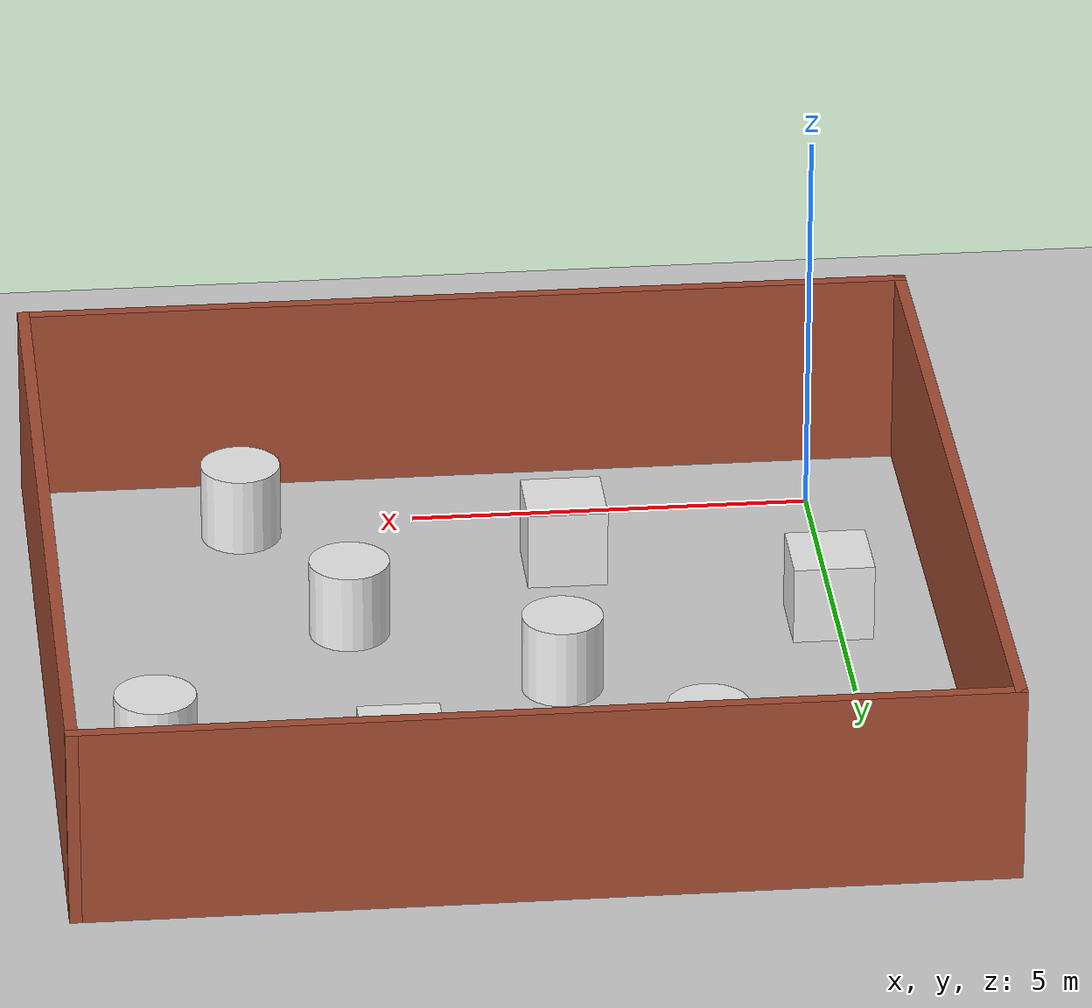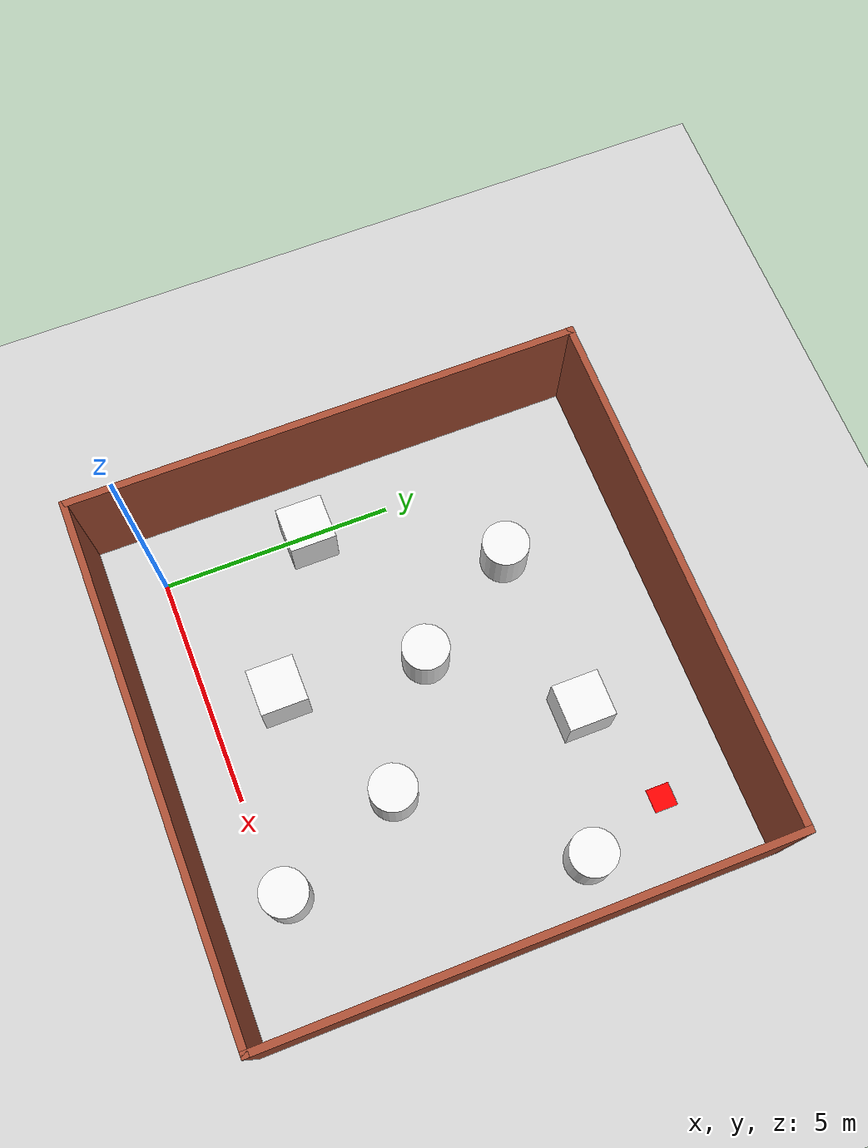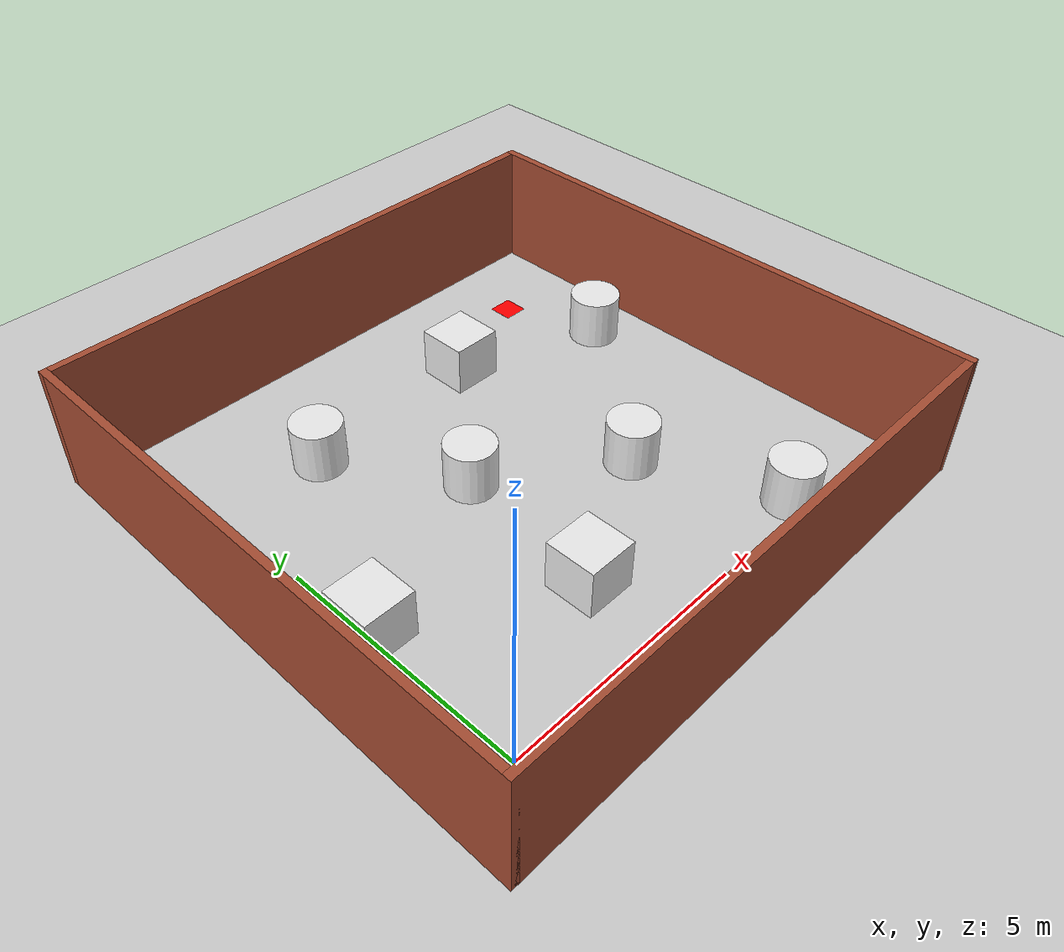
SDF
<sdf version="1.6">
 <world name="default">
  <light name="sun" type="directional">
   <pose>0 0 10 0 -0 0</pose>
   <diffuse>0.8 0.8 0.8 1</diffuse>
   <specular>0.2 0.2 0.2 1</specular>
   <attenuation>
    <range>1000</range>
    <constant>0.9</constant>
    <linear>0.01</linear>
    <quadratic>0.001</quadratic>
   </attenuation>
   <direction>-0.5 0.1 -0.9</direction>
  </light>
  <model name="ground_plane">
   <static>1</static>
   <link name="link">
    <collision name="collision">
     <geometry><plane><normal>0 0 1</normal><size>100 100</size></plane></geometry>
     <surface>
      <contact><collide_bitmask>65535</collide_bitmask></contact>
      <friction><ode><mu>100</mu><mu2>50</mu2></ode></friction>
     </surface>
    </collision>
    <visual name="visual">
     <cast_shadows>0</cast_shadows>
     <geometry><plane><normal>0 0 1</normal><size>100 100</size></plane></geometry>
     <material>
      <script><uri>file://media/materials/scripts/gazebo.material</uri><name>Gazebo/Grey</name></script>
     </material>
    </visual>
   </link>
  </model>
  <gravity>0 0 -9.8</gravity>
  <magnetic_field>6e-06 2.3e-05 -4.2e-05</magnetic_field>
  <atmosphere type="adiabatic"/>
  <physics name="default_physics" default="0" type="ode">
   <max_step_size>0.020</max_step_size>
   <real_time_factor>1</real_time_factor>
   <real_time_update_rate>1000</real_time_update_rate>
  </physics>
  <scene><ambient>0.4 0.4 0.4 1</ambient><background>0.7 0.7 0.7 1</background><shadows>1</shadows></scene>
  <audio><device>default</device></audio>
  <spherical_coordinates>
   <surface_model>EARTH_WGS84</surface_model>
   <latitude_deg>0</latitude_deg>
   <longitude_deg>0</longitude_deg>
   <elevation>0</elevation>
   <heading_deg>0</heading_deg>
  </spherical_coordinates>
  <model name="simul_1">
   <pose>4.24249 4.21237 0 0 -0 0</pose>
   <link name="Wall_0">
    <collision name="Wall_0_Collision">
     <geometry><box><size>11.25 0.15 2.5</size></box></geometry>
     <pose>0 0 1.25 0 -0 0</pose>
    </collision>
    <visual name="Wall_0_Visual">
     <pose>0 0 1.25 0 -0 0</pose>
     <geometry><box><size>11.25 0.15 2.5</size></box></geometry>
     <material>
      <script><uri>file://media/materials/scripts/gazebo.material</uri><name>Gazebo/Bricks</name></script>
      <ambient>1 1 1 1</ambient>
     </material>
     <meta><layer>0</layer></meta>
    </visual>
    <pose>0 -5.425 0 0 -0 0</pose>
   </link>
   <link name="Wall_1">
    <collision name="Wall_1_Collision">
     <geometry><box><size>11 0.15 2.5</size></box></geometry>
     <pose>0 0 1.25 0 -0 0</pose>
    </collision>
    <visual name="Wall_1_Visual">
     <pose>0 0 1.25 0 -0 0</pose>
     <geometry><box><size>11 0.15 2.5</size></box></geometry>
     <material>
      <script><uri>file://media/materials/scripts/gazebo.material</uri><name>Gazebo/Bricks</name></script>
      <ambient>1 1 1 1</ambient>
     </material>
     <meta><layer>0</layer></meta>
    </visual>
    <pose>5.55 0 0 0 -0 1.5708</pose>
   </link>
   <link name="Wall_2">
    <collision name="Wall_2_Collision">
     <geometry><box><size>11.25 0.15 2.5</size></box></geometry>
     <pose>0 0 1.25 0 -0 0</pose>
    </collision>
    <visual name="Wall_2_Visual">
     <pose>0 0 1.25 0 -0 0</pose>
     <geometry><box><size>11.25 0.15 2.5</size></box></geometry>
     <material>
      <script><uri>file://media/materials/scripts/gazebo.material</uri><name>Gazebo/Bricks</name></script>
      <ambient>1 1 1 1</ambient>
     </material>
     <meta><layer>0</layer></meta>
    </visual>
    <pose>0 5.425 0 0 -0 3.14159</pose>
   </link>
   <link name="Wall_3">
    <collision name="Wall_3_Collision">
     <geometry><box><size>11 0.15 2.5</size></box></geometry>
     <pose>0 0 1.25 0 -0 0</pose>
    </collision>
    <visual name="Wall_3_Visual">
     <pose>0 0 1.25 0 -0 0</pose>
     <geometry><box><size>11 0.15 2.5</size></box></geometry>
     <material>
      <script><uri>file://media/materials/scripts/gazebo.material</uri><name>Gazebo/Bricks</name></script>
      <ambient>1 1 1 1</ambient>
     </material>
     <meta><layer>0</layer></meta>
    </visual>
    <pose>-5.55 0 0 0 -0 -1.5708</pose>
   </link>
   <static>1</static>
  </model>
  <model name="unit_box">
   <pose>0.113709 3.19761 0.499995 -1e-05 -0 -0</pose>
   <link name="link">
    <collision name="collision"><geometry><box><size>1 1 1</size></box></geometry></collision>
    <visual name="visual">
     <geometry><box><size>1 1 1</size></box></geometry>
     <material>
      <script><name>Gazebo/White</name><uri>file://media/materials/scripts/gazebo.material</uri></script>
     </material>
    </visual>
   </link>
  </model>
  <model name="unit_box_0">
   <pose>3.2313 1.4768 0.499995 0 1e-05 0</pose>
   <link name="link">
    <collision name="collision"><geometry><box><size>1 1 1</size></box></geometry></collision>
    <visual name="visual">
     <geometry><box><size>1 1 1</size></box></geometry>
     <material>
      <script><name>Gazebo/White</name><uri>file://media/materials/scripts/gazebo.material</uri></script>
     </material>
    </visual>
   </link>
  </model>
  <model name="unit_cylinder">
   <pose>3.55954 4.55944 0.499998 3e-06 -3e-06 0</pose>
   <link name="link">
    <collision name="collision">
     <geometry><cylinder><radius>0.5</radius><length>1</length></cylinder></geometry>
    </collision>
    <visual name="visual">
     <geometry><cylinder><radius>0.5</radius><length>1</length></cylinder></geometry>
     <material>
      <script><name>Gazebo/White</name><uri>file://media/materials/scripts/gazebo.material</uri></script>
     </material>
    </visual>
   </link>
  </model>
  <model name="unit_cylinder_0">
   <pose>2.03628 6.93933 0.499992 -3e-06 3e-06 0</pose>
   <link name="link">
    <collision name="collision">
     <geometry><cylinder><radius>0.5</radius><length>1</length></cylinder></geometry>
    </collision>
    <visual name="visual">
     <geometry><cylinder><radius>0.5</radius><length>1</length></cylinder></geometry>
     <material>
      <script><name>Gazebo/White</name><uri>file://media/materials/scripts/gazebo.material</uri></script>
     </material>
    </visual>
   </link>
  </model>
  <model name="unit_cylinder_1">
   <pose>7.18449 0.241526 0.499998 3e-06 -4e-06 0</pose>
   <link name="link">
    <collision name="collision">
     <geometry><cylinder><radius>0.5</radius><length>1</length></cylinder></geometry>
    </collision>
    <visual name="visual">
     <geometry><cylinder><radius>0.5</radius><length>1</length></cylinder></geometry>
     <material>
      <script><name>Gazebo/White</name><uri>file://media/materials/scripts/gazebo.material</uri></script>
     </material>
    </visual>
   </link>
  </model>
  <model name="unit_cylinder_2">
   <pose>6.03117 2.91534 0.499997 3e-06 -4e-06 0</pose>
   <link name="link">
    <collision name="collision">
     <geometry><cylinder><radius>0.5</radius><length>1</length></cylinder></geometry>
    </collision>
    <visual name="visual">
     <geometry><cylinder><radius>0.5</radius><length>1</length></cylinder></geometry>
     <material>
      <script><name>Gazebo/White</name><uri>file://media/materials/scripts/gazebo.material</uri></script>
     </material>
    </visual>
   </link>
  </model>
  <model name="unit_box_1">
   <pose>5.74302 7.10997 0.499995 -1e-05 0 0</pose>
   <link name="link">
    <collision name="collision"><geometry><box><size>1 1 1</size></box></geometry></collision>
    <visual name="visual">
     <geometry><box><size>1 1 1</size></box></geometry>
     <material>
      <script><name>Gazebo/White</name><uri>file://media/materials/scripts/gazebo.material</uri></script>
     </material>
    </visual>
   </link>
  </model>
  <model name="unit_cylinder_3">
   <pose>8.62016 6.08803 0.499992 -3e-06 -4e-06 -0</pose>
   <link name="link">
    <collision name="collision">
     <geometry><cylinder><radius>0.5</radius><length>1</length></cylinder></geometry>
    </collision>
    <visual name="visual">
     <geometry><cylinder><radius>0.5</radius><length>1</length></cylinder></geometry>
     <material>
      <script><name>Gazebo/White</name><uri>file://media/materials/scripts/gazebo.material</uri></script>
     </material>
    </visual>
   </link>
  </model>
  <model name="goal_box">
   <pose>8.0 8.0 0 0 -0 -1.5708</pose>
   <link name="goal_box">
    <visual name="goal_box">
     <pose>0.0 0.0 0.0005 0 -0 0</pose>
     <geometry><box><size>0.5 0.5 0.001</size></box></geometry>
     <material>
      <script><uri>file://media/materials/scripts/gazebo.material</uri><name>Gazebo/Grey</name></script>
      <ambient>1 0 0 1</ambient>
     </material>
    </visual>
   </link>
   <static>1</static>
  </model>
 </world>
</sdf>
